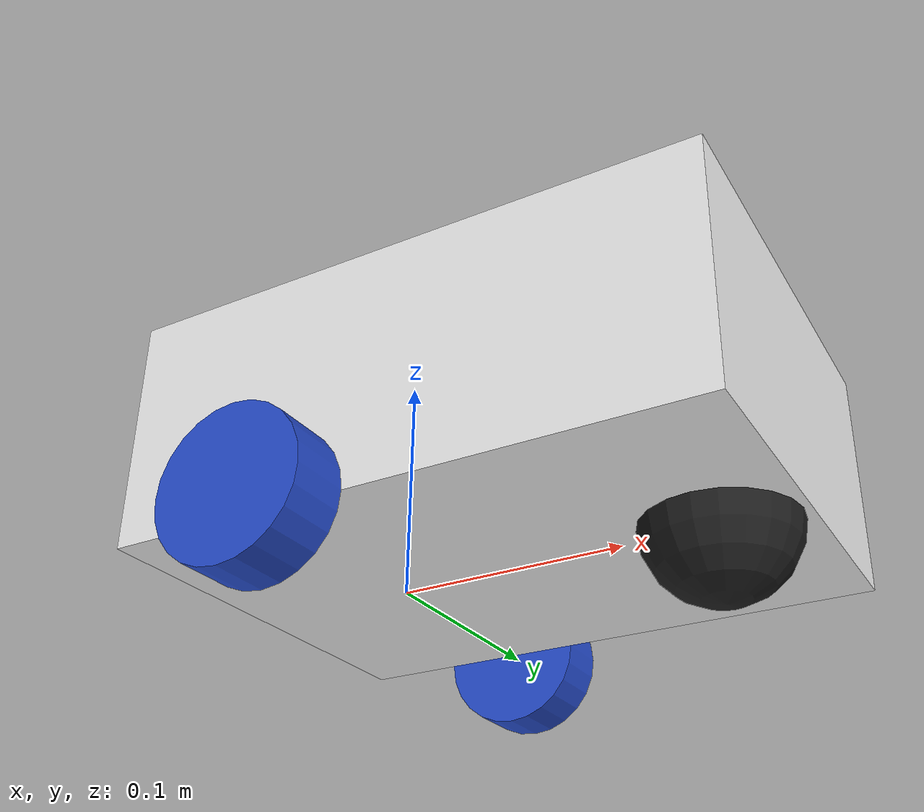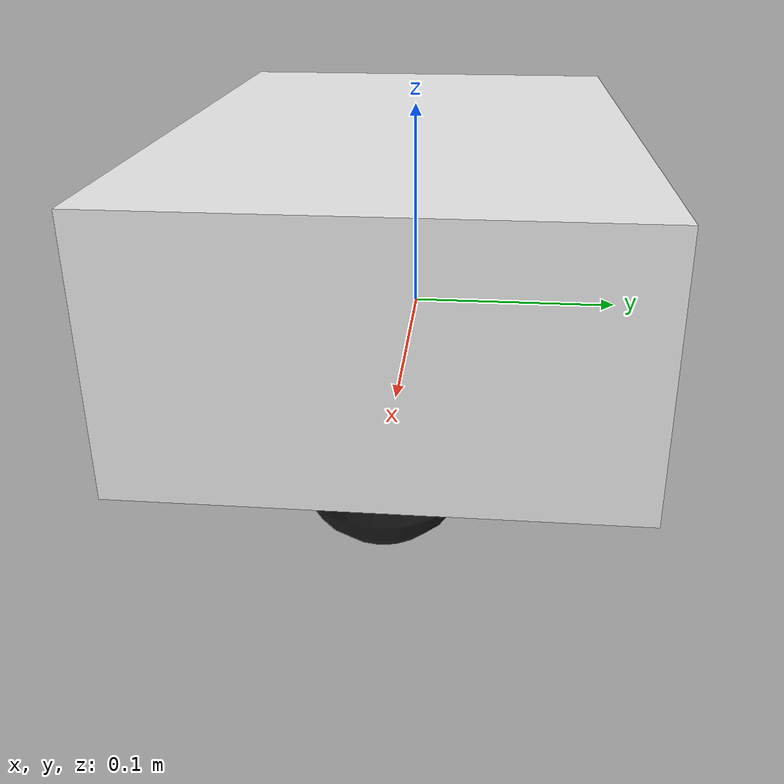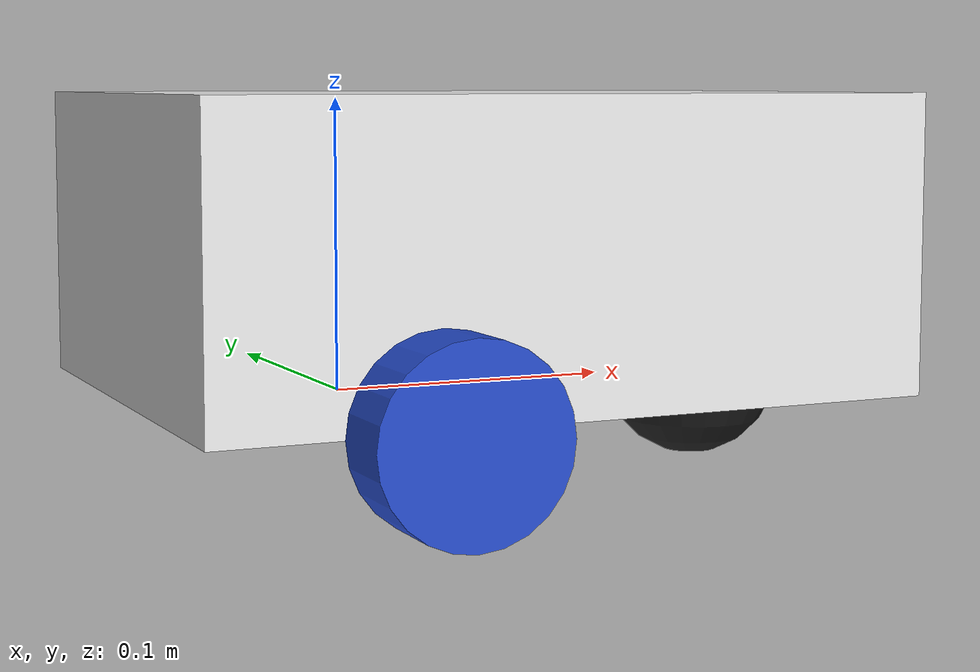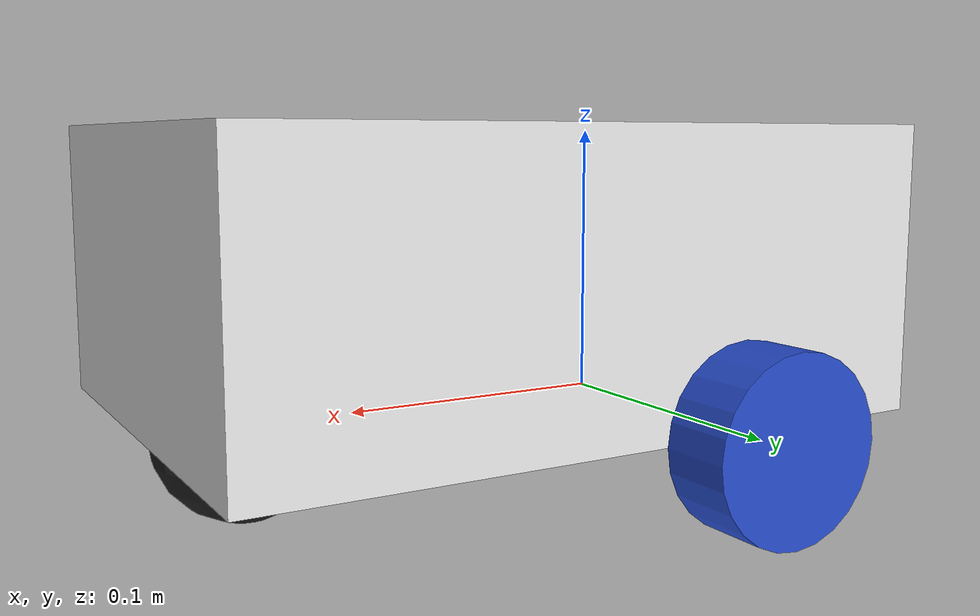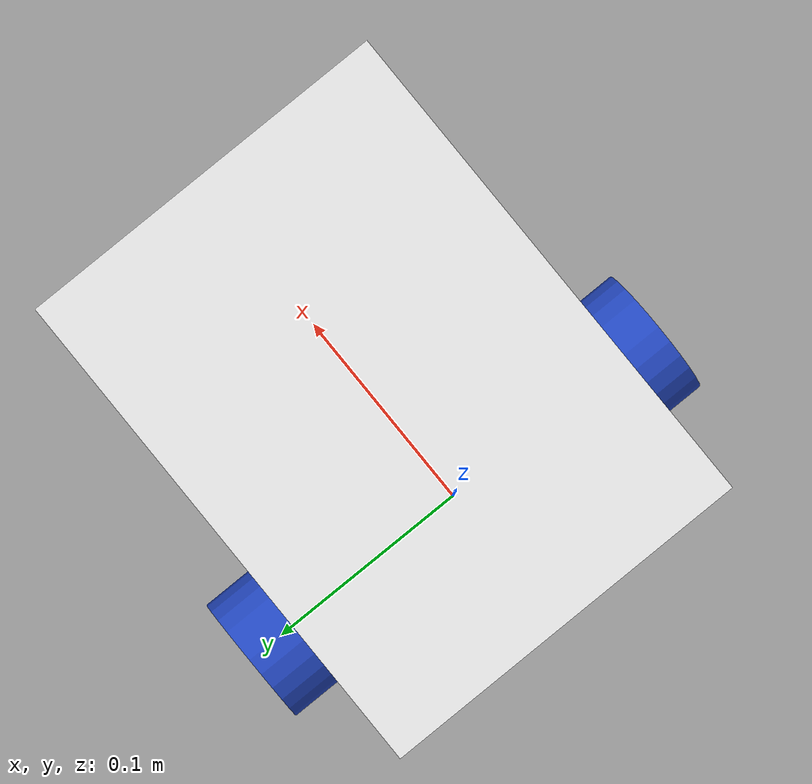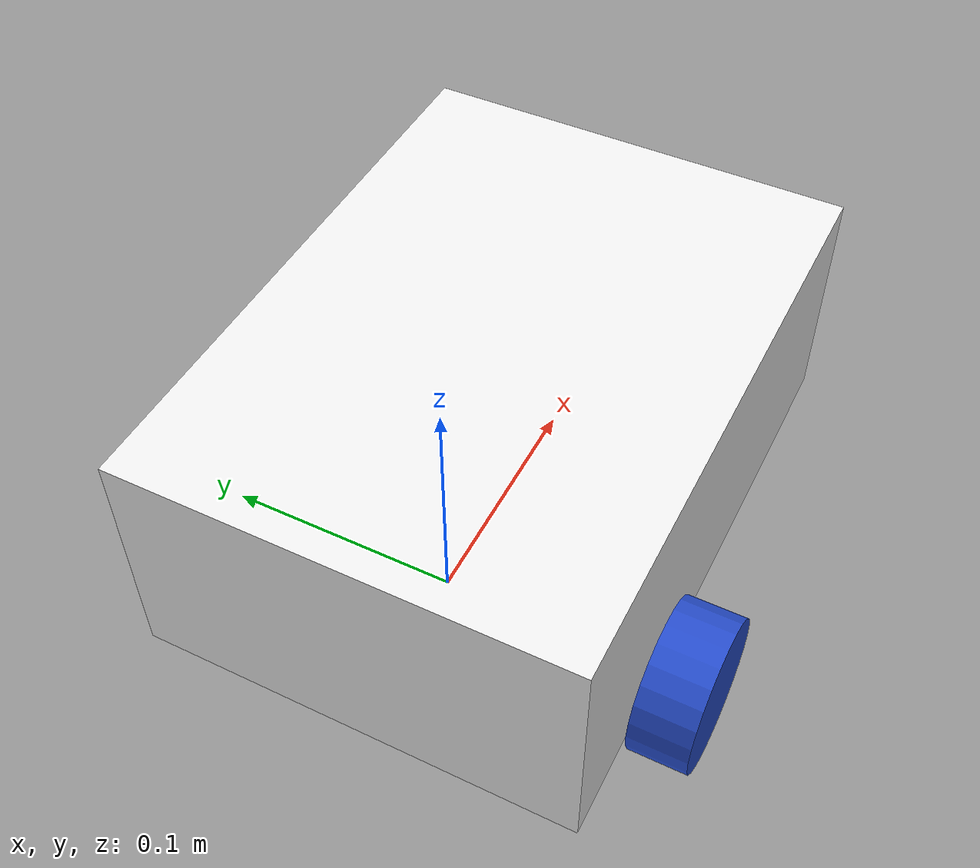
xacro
<?xml version="1.0"?>
<robot xmlns:xacro="http://www.ros.org/wiki/xacro">

    <!-- VARIABLES -->

    <xacro:property name="box_base" value="0.250"/>
    <xacro:property name="box_width" value="0.185"/>
    <xacro:property name="box_height" value="0.102"/>
    <xacro:property name="box_mass" value="0.1"/>

    <xacro:property name="wheel_radius" value="0.032"/>
    <xacro:property name="wheel_length" value="0.025"/>
    <xacro:property name="wheel_mass" value="0.025"/>

    <xacro:property name="caster_wheel_mass" value="0.025"/>

    <!-- BASE LINK -->

    <link name="base_link">
    </link>

    <!-- CHASSIS -->

    <joint name="chassis_joint" type="fixed">
        <parent link="base_link"/>
        <child link="chassis"/>
        <origin xyz="-0.1 0 0"/>
    </joint>

    <link name="chassis">
        <visual>
            <origin xyz="0.15 0 ${box_height/2}" rpy="0 0 0"/>
            <geometry>
                <box size="${box_base} ${box_width} ${box_height}"/>
            </geometry>
            <material name="white"/>
        </visual>
        <collision>
            <origin xyz="0.15 0 ${box_height/2}" rpy="0 0 0"/>
            <geometry>
                <box size="${box_base} ${box_width} ${box_height}"/>
            </geometry>
        </collision>
        <xacro:inertial_box mass="${box_mass}" x="${box_base}" y="${box_width}" z="${box_height}">
            <origin xyz="0.15 0 ${box_height/2}" rpy="0 0 0"/>
        </xacro:inertial_box>
    </link>

    <!-- LEFT WHEEL -->

    <joint name="left_wheel_joint" type="continuous">
        <parent link="base_link"/>
        <child link="left_wheel"/>
        <origin xyz="0 ${box_width/2 + wheel_length/2} 0" rpy="-${pi/2} 0 0"/>
        <axis xyz="0 0 1"/>
    </joint>

    <link name="left_wheel">
        <visual>
            <geometry>
                <cylinder radius="${wheel_radius}" length="${wheel_length}"/>
            </geometry>
            <material name="blue"/>
        </visual>
        <collision>
            <geometry>
                <cylinder radius="${wheel_radius}" length="${wheel_length}"/>
            </geometry>
        </collision>
        <xacro:inertial_cylinder mass="${wheel_mass}" length="${wheel_length}" radius="${wheel_radius}">
            <origin xyz="0 0 0" rpy="0 0 0"/>
        </xacro:inertial_cylinder>
    </link>

    <!-- RIGHT WHEEL -->

    <joint name="right_wheel_joint" type="continuous">
        <parent link="base_link"/>
        <child link="right_wheel"/>
        <origin xyz="0 -${box_width/2 + wheel_length/2} 0" rpy="${pi/2} 0 0"/>
        <axis xyz="0 0 1"/>
    </joint>

    <link name="right_wheel">
        <visual>
            <geometry>
                <cylinder radius="${wheel_radius}" length="${wheel_length}"/>
            </geometry>
            <material name="blue"/>
        </visual>
        <collision>
            <geometry>
                <cylinder radius="${wheel_radius}" length="${wheel_length}"/>
            </geometry>
        </collision>
        <xacro:inertial_cylinder mass="${wheel_mass}" length="${wheel_length}" radius="${wheel_radius}">
            <origin xyz="0 0 0" rpy="0 0 0"/>
        </xacro:inertial_cylinder>
    </link>

    <!-- CASTER WHEEL -->

    <joint name="caster_wheel_joint" type="fixed">
        <parent link="chassis"/>
        <child link="caster_wheel"/>
        <origin xyz="0.24 0 0" rpy="0 0 0"/>
    </joint>

    <link name="caster_wheel">
        <visual>
            <geometry>
                <sphere radius="${wheel_radius}"/>
            </geometry>
            <material name="black"/>
        </visual>
        <collision>
            <geometry>
                <sphere radius="${wheel_radius}"/>
            </geometry>
        </collision>
        <xacro:inertial_sphere mass="${caster_wheel_mass}" radius="${wheel_radius}">
            <origin xyz="0 0 0" rpy="0 0 0"/>
        </xacro:inertial_sphere>
    </link>

</robot>
